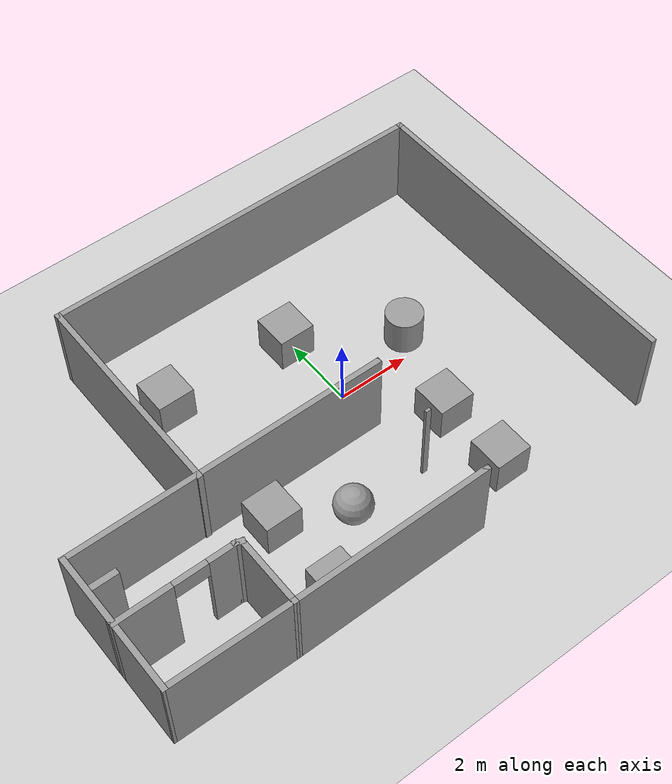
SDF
<sdf version="1.7">
 <world name="default">
  <light name="sun" type="directional">
   <pose>0 0 10 0 -0 0</pose>
   <diffuse>0.8 0.8 0.8 1</diffuse>
   <specular>0.2 0.2 0.2 1</specular>
   <attenuation>
    <range>1000</range>
    <constant>0.9</constant>
    <linear>0.01</linear>
    <quadratic>0.001</quadratic>
   </attenuation>
   <direction>-0.5 0.1 -0.9</direction>
   <spot><inner_angle>0</inner_angle><outer_angle>0</outer_angle><falloff>0</falloff></spot>
  </light>
  <model name="ground_plane">
   <static>1</static>
   <link name="link">
    <collision name="collision">
     <geometry><plane><normal>0 0 1</normal><size>100 100</size></plane></geometry>
     <surface>
      <contact><collide_bitmask>65535</collide_bitmask></contact>
      <friction><ode><mu>100</mu><mu2>50</mu2></ode></friction>
     </surface>
    </collision>
    <visual name="visual">
     <cast_shadows>0</cast_shadows>
     <geometry><plane><normal>0 0 1</normal><size>100 100</size></plane></geometry>
     <material>
      <script><uri>file://media/materials/scripts/gazebo.material</uri><name>Gazebo/Grey</name></script>
     </material>
    </visual>
   </link>
  </model>
  <gravity>0 0 -9.8</gravity>
  <magnetic_field>6e-06 2.3e-05 -4.2e-05</magnetic_field>
  <atmosphere type="adiabatic"/>
  <physics type="ode">
   <max_step_size>0.001</max_step_size>
   <real_time_factor>1</real_time_factor>
   <real_time_update_rate>1000</real_time_update_rate>
  </physics>
  <scene><ambient>0.4 0.4 0.4 1</ambient><background>0.7 0.7 0.7 1</background><shadows>1</shadows></scene>
  <spherical_coordinates>
   <surface_model>EARTH_WGS84</surface_model>
   <latitude_deg>0</latitude_deg>
   <longitude_deg>0</longitude_deg>
   <elevation>0</elevation>
   <heading_deg>0</heading_deg>
  </spherical_coordinates>
  <model name="room1">
   <pose>-4.14057 -2.53307 0 0 -0 0</pose>
   <link name="Door_0">
    <collision name="Door_0_Collision">
     <geometry><box><size>0.9 0.17 2</size></box></geometry>
     <pose>0 0 1 0 -0 0</pose>
    </collision>
    <visual name="Door_0_Visual">
     <pose>0 0 1 0 -0 0</pose>
     <geometry><box><size>0.9 0.17 2</size></box></geometry>
     <material>
      <script><uri>file://media/materials/scripts/gazebo.material</uri><name>Gazebo/Grey</name></script>
     </material>
    </visual>
    <pose>-3.87465 0.722165 0 0 -0 0</pose>
   </link>
   <link name="Wall_19">
    <collision name="Wall_19_Collision">
     <geometry><box><size>2 0.15 2.5</size></box></geometry>
     <pose>0 0 1.25 0 -0 0</pose>
    </collision>
    <visual name="Wall_19_Visual">
     <pose>0 0 1.25 0 -0 0</pose>
     <geometry><box><size>2 0.15 2.5</size></box></geometry>
     <material>
      <script><uri>file://media/materials/scripts/gazebo.material</uri><name>Gazebo/Grey</name></script>
      <ambient>1 1 1 1</ambient>
     </material>
     <meta><layer>0</layer></meta>
    </visual>
    <pose>-4.29943 0.468072 0 0 -0 1.5708</pose>
   </link>
   <link name="Wall_20">
    <collision name="Wall_20_Collision">
     <geometry><box><size>8.75 0.15 2.5</size></box></geometry>
     <pose>0 0 1.25 0 -0 0</pose>
    </collision>
    <visual name="Wall_20_Visual">
     <pose>0 0 1.25 0 -0 0</pose>
     <geometry><box><size>8.75 0.15 2.5</size></box></geometry>
     <material>
      <script><uri>file://media/materials/scripts/gazebo.material</uri><name>Gazebo/Grey</name></script>
      <ambient>1 1 1 1</ambient>
     </material>
     <meta><layer>0</layer></meta>
    </visual>
    <pose>0.000572 1.39307 0 0 -0 0</pose>
   </link>
   <link name="Wall_21">
    <pose>4.30057 -0.531928 0 0 -0 -1.5708</pose>
    <visual name="Wall_21_Visual_0">
     <pose>-1.93478 0 1.25 0 -0 0</pose>
     <geometry><box><size>0.130435 0.15 2.5</size></box></geometry>
     <material>
      <script><uri>file://media/materials/scripts/gazebo.material</uri><name>Gazebo/Grey</name></script>
      <ambient>1 1 1 1</ambient>
     </material>
     <meta><layer>0</layer></meta>
    </visual>
    <collision name="Wall_21_Collision_0">
     <geometry><box><size>0.130435 0.15 2.5</size></box></geometry>
     <pose>-1.93478 0 1.25 0 -0 0</pose>
    </collision>
    <visual name="Wall_21_Visual_1">
     <pose>-0.101824 0 1.25 0 -0 0</pose>
     <geometry><box><size>0.075482 0.15 2.5</size></box></geometry>
     <material>
      <script><uri>file://media/materials/scripts/gazebo.material</uri><name>Gazebo/Grey</name></script>
      <ambient>1 1 1 1</ambient>
     </material>
     <meta><layer>0</layer></meta>
    </visual>
    <collision name="Wall_21_Collision_1">
     <geometry><box><size>0.075482 0.15 2.5</size></box></geometry>
     <pose>-0.101824 0 1.25 0 -0 0</pose>
    </collision>
    <visual name="Wall_21_Visual_2">
     <pose>1.93296 0 1.25 0 -0 0</pose>
     <geometry><box><size>0.134083 0.15 2.5</size></box></geometry>
     <material>
      <script><uri>file://media/materials/scripts/gazebo.material</uri><name>Gazebo/Grey</name></script>
      <ambient>1 1 1 1</ambient>
     </material>
     <meta><layer>0</layer></meta>
    </visual>
    <collision name="Wall_21_Collision_2">
     <geometry><box><size>0.134083 0.15 2.5</size></box></geometry>
     <pose>1.93296 0 1.25 0 -0 0</pose>
    </collision>
   </link>
   <link name="Wall_22">
    <collision name="Wall_22_Collision">
     <geometry><box><size>5.5 0.15 2.5</size></box></geometry>
     <pose>0 0 1.25 0 -0 0</pose>
    </collision>
    <visual name="Wall_22_Visual">
     <pose>0 0 1.25 0 -0 0</pose>
     <geometry><box><size>5.5 0.15 2.5</size></box></geometry>
     <material>
      <script><uri>file://media/materials/scripts/gazebo.material</uri><name>Gazebo/Grey</name></script>
      <ambient>1 1 1 1</ambient>
     </material>
     <meta><layer>0</layer></meta>
    </visual>
    <pose>1.62557 -2.45693 0 0 -0 3.14159</pose>
   </link>
   <link name="Wall_23">
    <collision name="Wall_23_Collision">
     <geometry><box><size>2 0.15 2.5</size></box></geometry>
     <pose>0 0 1.25 0 -0 0</pose>
    </collision>
    <visual name="Wall_23_Visual">
     <pose>0 0 1.25 0 -0 0</pose>
     <geometry><box><size>2 0.15 2.5</size></box></geometry>
     <material>
      <script><uri>file://media/materials/scripts/gazebo.material</uri><name>Gazebo/Grey</name></script>
      <ambient>1 1 1 1</ambient>
     </material>
     <meta><layer>0</layer></meta>
    </visual>
    <pose>-1.04943 -1.53193 0 0 -0 1.5708</pose>
   </link>
   <link name="Wall_27">
    <collision name="Wall_27_Collision">
     <geometry><box><size>0.25 0.15 2.5</size></box></geometry>
     <pose>0 0 1.25 0 -0 0</pose>
    </collision>
    <visual name="Wall_27_Visual">
     <pose>0 0 1.25 0 -0 0</pose>
     <geometry><box><size>0.25 0.15 2.5</size></box></geometry>
     <material>
      <script><uri>file://media/materials/scripts/gazebo.material</uri><name>Gazebo/Grey</name></script>
      <ambient>1 1 1 1</ambient>
     </material>
     <meta><layer>0</layer></meta>
    </visual>
    <pose>-4.29943 -0.506927 0 0 -0 -1.5708</pose>
   </link>
   <link name="Wall_28">
    <pose>-2.74943 -0.556927 0 0 -0 0</pose>
    <visual name="Wall_28_Visual_0">
     <pose>-0.851527 0 1.25 0 -0 0</pose>
     <geometry><box><size>1.54695 0.15 2.5</size></box></geometry>
     <material>
      <script><uri>file://media/materials/scripts/gazebo.material</uri><name>Gazebo/Grey</name></script>
      <ambient>1 1 1 1</ambient>
     </material>
     <meta><layer>0</layer></meta>
    </visual>
    <collision name="Wall_28_Collision_0">
     <geometry><box><size>1.54695 0.15 2.5</size></box></geometry>
     <pose>-0.851527 0 1.25 0 -0 0</pose>
    </collision>
    <visual name="Wall_28_Visual_1">
     <pose>1.22347 0 1.25 0 -0 0</pose>
     <geometry><box><size>0.803053 0.15 2.5</size></box></geometry>
     <material>
      <script><uri>file://media/materials/scripts/gazebo.material</uri><name>Gazebo/Grey</name></script>
      <ambient>1 1 1 1</ambient>
     </material>
     <meta><layer>0</layer></meta>
    </visual>
    <collision name="Wall_28_Collision_1">
     <geometry><box><size>0.803053 0.15 2.5</size></box></geometry>
     <pose>1.22347 0 1.25 0 -0 0</pose>
    </collision>
    <visual name="Wall_28_Visual_2">
     <pose>0.371947 0 2.25 0 -0 0</pose>
     <geometry><box><size>0.9 0.15 0.5</size></box></geometry>
     <material>
      <script><uri>file://media/materials/scripts/gazebo.material</uri><name>Gazebo/Grey</name></script>
      <ambient>1 1 1 1</ambient>
     </material>
     <meta><layer>0</layer></meta>
    </visual>
    <collision name="Wall_28_Collision_2">
     <geometry><box><size>0.9 0.15 0.5</size></box></geometry>
     <pose>0.371947 0 2.25 0 -0 0</pose>
    </collision>
   </link>
   <link name="Wall_30">
    <collision name="Wall_30_Collision">
     <geometry><box><size>0.15 0.15 2.5</size></box></geometry>
     <pose>0 0 1.25 0 -0 0</pose>
    </collision>
    <visual name="Wall_30_Visual">
     <pose>0 0 1.25 0 -0 0</pose>
     <geometry><box><size>0.15 0.15 2.5</size></box></geometry>
     <material>
      <script><uri>file://media/materials/scripts/gazebo.material</uri><name>Gazebo/Grey</name></script>
      <ambient>1 1 1 1</ambient>
     </material>
     <meta><layer>0</layer></meta>
    </visual>
    <pose>-1.19943 -0.556927 0 0 -0 0</pose>
   </link>
   <link name="Wall_31">
    <collision name="Wall_31_Collision">
     <geometry><box><size>0.308114 0.15 2.5</size></box></geometry>
     <pose>0 0 1.25 0 -0 0</pose>
    </collision>
    <visual name="Wall_31_Visual">
     <pose>0 0 1.25 0 -0 0</pose>
     <geometry><box><size>0.308114 0.15 2.5</size></box></geometry>
     <material>
      <script><uri>file://media/materials/scripts/gazebo.material</uri><name>Gazebo/Grey</name></script>
      <ambient>1 1 1 1</ambient>
     </material>
     <meta><layer>0</layer></meta>
    </visual>
    <pose>-1.12443 -0.581928 0 0 -0 -0.321751</pose>
   </link>
   <link name="Wall_34">
    <collision name="Wall_34_Collision">
     <geometry><box><size>2 0.15 2.5</size></box></geometry>
     <pose>0 0 1.25 0 -0 0</pose>
    </collision>
    <visual name="Wall_34_Visual">
     <pose>0 0 1.25 0 -0 0</pose>
     <geometry><box><size>2 0.15 2.5</size></box></geometry>
     <material>
      <script><uri>file://media/materials/scripts/gazebo.material</uri><name>Gazebo/Grey</name></script>
      <ambient>1 1 1 1</ambient>
     </material>
     <meta><layer>0</layer></meta>
    </visual>
    <pose>-4.29943 -1.48193 0 0 -0 -1.5708</pose>
   </link>
   <link name="Wall_35">
    <collision name="Wall_35_Collision">
     <geometry><box><size>3.40038 0.15 2.5</size></box></geometry>
     <pose>0 0 1.25 0 -0 0</pose>
    </collision>
    <visual name="Wall_35_Visual">
     <pose>0 0 1.25 0 -0 0</pose>
     <geometry><box><size>3.40038 0.15 2.5</size></box></geometry>
     <material>
      <script><uri>file://media/materials/scripts/gazebo.material</uri><name>Gazebo/Grey</name></script>
      <ambient>1 1 1 1</ambient>
     </material>
     <meta><layer>0</layer></meta>
    </visual>
    <pose>-2.67443 -2.43193 0 0 -0 -0.015383</pose>
   </link>
   <static>1</static>
  </model>
  <model name="unit_box">
   <link name="link">
    <inertial>
     <mass>1</mass>
     <inertia>
      <ixx>0.166667</ixx>
      <ixy>0</ixy>
      <ixz>0</ixz>
      <iyy>0.166667</iyy>
      <iyz>0</iyz>
      <izz>0.166667</izz>
     </inertia>
    </inertial>
    <visual name="visual">
     <geometry><box><size>1 1 1</size></box></geometry>
     <material>
      <script><name>Gazebo/Grey</name><uri>file://media/materials/scripts/gazebo.material</uri></script>
      <shader type="pixel"/>
     </material>
    </visual>
    <collision name="collision">
     <geometry><box><size>1 1 1</size></box></geometry>
     <surface>
      <friction>
       <ode><mu>1</mu><mu2>1</mu2><fdir1>0 0 0</fdir1><slip1>0</slip1><slip2>0</slip2></ode>
       <torsional>
        <coefficient>1</coefficient>
        <patch_radius>0</patch_radius>
        <surface_radius>0</surface_radius>
        <use_patch_radius>1</use_patch_radius>
        <ode><slip>0</slip></ode>
       </torsional>
      </friction>
      <bounce><restitution_coefficient>0</restitution_coefficient><threshold>1e+06</threshold></bounce>
      <contact>
       <collide_without_contact>0</collide_without_contact>
       <collide_without_contact_bitmask>1</collide_without_contact_bitmask>
       <collide_bitmask>1</collide_bitmask>
       <ode>
        <soft_cfm>0</soft_cfm>
        <soft_erp>0.2</soft_erp>
        <kp>1e+13</kp>
        <kd>1</kd>
        <max_vel>0.01</max_vel>
        <min_depth>0</min_depth>
       </ode>
       <bullet>
        <split_impulse>1</split_impulse>
        <split_impulse_penetration_threshold>-0.01</split_impulse_penetration_threshold>
        <soft_cfm>0</soft_cfm>
        <soft_erp>0.2</soft_erp>
        <kp>1e+13</kp>
        <kd>1</kd>
       </bullet>
      </contact>
     </surface>
    </collision>
   </link>
   <link name="link_1">
    <inertial>
     <mass>1</mass>
     <inertia>
      <ixx>0.166667</ixx>
      <ixy>0</ixy>
      <ixz>0</ixz>
      <iyy>0.166667</iyy>
      <iyz>0</iyz>
      <izz>0.166667</izz>
     </inertia>
    </inertial>
    <pose>-0.077876 2.32444 2.8e-05 1e-05 -0 0</pose>
    <visual name="visual">
     <geometry><box><size>1 1 1</size></box></geometry>
     <material>
      <lighting>1</lighting>
      <script><uri>file://media/materials/scripts/gazebo.material</uri><name>Gazebo/Grey</name></script>
      <shader type="pixel"><normal_map>__default__</normal_map></shader>
      <ambient>0.3 0.3 0.3 1</ambient>
      <diffuse>0.7 0.7 0.7 1</diffuse>
      <specular>0.01 0.01 0.01 1</specular>
      <emissive>0 0 0 1</emissive>
     </material>
    </visual>
    <collision name="collision">
     <geometry><box><size>1 1 1</size></box></geometry>
     <surface>
      <friction>
       <ode><mu>1</mu><mu2>1</mu2><fdir1>0 0 0</fdir1><slip1>0</slip1><slip2>0</slip2></ode>
       <torsional>
        <coefficient>1</coefficient>
        <patch_radius>0</patch_radius>
        <surface_radius>0</surface_radius>
        <use_patch_radius>1</use_patch_radius>
        <ode><slip>0</slip></ode>
       </torsional>
      </friction>
      <bounce><restitution_coefficient>0</restitution_coefficient><threshold>1e+06</threshold></bounce>
      <contact>
       <collide_without_contact>0</collide_without_contact>
       <collide_without_contact_bitmask>1</collide_without_contact_bitmask>
       <collide_bitmask>1</collide_bitmask>
       <ode>
        <soft_cfm>0</soft_cfm>
        <soft_erp>0.2</soft_erp>
        <kp>1e+13</kp>
        <kd>1</kd>
        <max_vel>0.01</max_vel>
        <min_depth>0</min_depth>
       </ode>
       <bullet>
        <split_impulse>1</split_impulse>
        <split_impulse_penetration_threshold>-0.01</split_impulse_penetration_threshold>
        <soft_cfm>0</soft_cfm>
        <soft_erp>0.2</soft_erp>
        <kp>1e+13</kp>
        <kd>1</kd>
       </bullet>
      </contact>
     </surface>
    </collision>
   </link>
   <link name="link_2">
    <inertial>
     <mass>1</mass>
     <inertia><ixx>0.1</ixx><ixy>0</ixy><ixz>0</ixz><iyy>0.1</iyy><iyz>0</iyz><izz>0.1</izz></inertia>
    </inertial>
    <pose>1.61877 1.42939 1.9e-05 1e-05 -0 0</pose>
    <visual name="visual">
     <geometry><sphere><radius>0.5</radius></sphere></geometry>
     <material>
      <lighting>1</lighting>
      <script><uri>file://media/materials/scripts/gazebo.material</uri><name>Gazebo/Grey</name></script>
      <shader type="pixel"/>
     </material>
    </visual>
    <collision name="collision">
     <geometry><sphere><radius>0.5</radius></sphere></geometry>
     <surface>
      <friction>
       <ode><mu>1</mu><mu2>1</mu2><fdir1>0 0 0</fdir1><slip1>0</slip1><slip2>0</slip2></ode>
       <torsional>
        <coefficient>1</coefficient>
        <patch_radius>0</patch_radius>
        <surface_radius>0</surface_radius>
        <use_patch_radius>1</use_patch_radius>
        <ode><slip>0</slip></ode>
       </torsional>
      </friction>
      <bounce><restitution_coefficient>0</restitution_coefficient><threshold>1e+06</threshold></bounce>
      <contact>
       <collide_without_contact>0</collide_without_contact>
       <collide_without_contact_bitmask>1</collide_without_contact_bitmask>
       <collide_bitmask>1</collide_bitmask>
       <ode>
        <soft_cfm>0</soft_cfm>
        <soft_erp>0.2</soft_erp>
        <kp>1e+13</kp>
        <kd>1</kd>
        <max_vel>0.01</max_vel>
        <min_depth>0</min_depth>
       </ode>
       <bullet>
        <split_impulse>1</split_impulse>
        <split_impulse_penetration_threshold>-0.01</split_impulse_penetration_threshold>
        <soft_cfm>0</soft_cfm>
        <soft_erp>0.2</soft_erp>
        <kp>1e+13</kp>
        <kd>1</kd>
       </bullet>
      </contact>
     </surface>
    </collision>
   </link>
   <link name="link_3">
    <inertial>
     <mass>1</mass>
     <inertia>
      <ixx>0.166667</ixx>
      <ixy>0</ixy>
      <ixz>0</ixz>
      <iyy>0.166667</iyy>
      <iyz>0</iyz>
      <izz>0.166667</izz>
     </inertia>
    </inertial>
    <pose>5.17507 2.35499 2.8e-05 1e-05 -0 0</pose>
    <visual name="visual">
     <geometry><box><size>1 1 1</size></box></geometry>
     <material>
      <lighting>1</lighting>
      <script><uri>file://media/materials/scripts/gazebo.material</uri><name>Gazebo/Grey</name></script>
      <shader type="pixel"/>
     </material>
    </visual>
    <collision name="collision">
     <geometry><box><size>1 1 1</size></box></geometry>
     <surface>
      <friction>
       <ode><mu>1</mu><mu2>1</mu2><fdir1>0 0 0</fdir1><slip1>0</slip1><slip2>0</slip2></ode>
       <torsional>
        <coefficient>1</coefficient>
        <patch_radius>0</patch_radius>
        <surface_radius>0</surface_radius>
        <use_patch_radius>1</use_patch_radius>
        <ode><slip>0</slip></ode>
       </torsional>
      </friction>
      <bounce><restitution_coefficient>0</restitution_coefficient><threshold>1e+06</threshold></bounce>
      <contact>
       <collide_without_contact>0</collide_without_contact>
       <collide_without_contact_bitmask>1</collide_without_contact_bitmask>
       <collide_bitmask>1</collide_bitmask>
       <ode>
        <soft_cfm>0</soft_cfm>
        <soft_erp>0.2</soft_erp>
        <kp>1e+13</kp>
        <kd>1</kd>
        <max_vel>0.01</max_vel>
        <min_depth>0</min_depth>
       </ode>
       <bullet>
        <split_impulse>1</split_impulse>
        <split_impulse_penetration_threshold>-0.01</split_impulse_penetration_threshold>
        <soft_cfm>0</soft_cfm>
        <soft_erp>0.2</soft_erp>
        <kp>1e+13</kp>
        <kd>1</kd>
       </bullet>
      </contact>
     </surface>
    </collision>
   </link>
   <link name="link_4">
    <inertial>
     <mass>1</mass>
     <inertia>
      <ixx>0.166667</ixx>
      <ixy>0</ixy>
      <ixz>0</ixz>
      <iyy>0.166667</iyy>
      <iyz>0</iyz>
      <izz>0.166667</izz>
     </inertia>
    </inertial>
    <pose>5.19446 0.329196 8e-06 1e-05 -0 0</pose>
    <visual name="visual">
     <geometry><box><size>1 1 1</size></box></geometry>
     <material>
      <lighting>1</lighting>
      <script><uri>file://media/materials/scripts/gazebo.material</uri><name>Gazebo/Grey</name></script>
      <shader type="pixel"/>
     </material>
    </visual>
    <collision name="collision">
     <geometry><box><size>1 1 1</size></box></geometry>
     <surface>
      <friction>
       <ode><mu>1</mu><mu2>1</mu2><fdir1>0 0 0</fdir1><slip1>0</slip1><slip2>0</slip2></ode>
       <torsional>
        <coefficient>1</coefficient>
        <patch_radius>0</patch_radius>
        <surface_radius>0</surface_radius>
        <use_patch_radius>1</use_patch_radius>
        <ode><slip>0</slip></ode>
       </torsional>
      </friction>
      <bounce><restitution_coefficient>0</restitution_coefficient><threshold>1e+06</threshold></bounce>
      <contact>
       <collide_without_contact>0</collide_without_contact>
       <collide_without_contact_bitmask>1</collide_without_contact_bitmask>
       <collide_bitmask>1</collide_bitmask>
       <ode>
        <soft_cfm>0</soft_cfm>
        <soft_erp>0.2</soft_erp>
        <kp>1e+13</kp>
        <kd>1</kd>
        <max_vel>0.01</max_vel>
        <min_depth>0</min_depth>
       </ode>
       <bullet>
        <split_impulse>1</split_impulse>
        <split_impulse_penetration_threshold>-0.01</split_impulse_penetration_threshold>
        <soft_cfm>0</soft_cfm>
        <soft_erp>0.2</soft_erp>
        <kp>1e+13</kp>
        <kd>1</kd>
       </bullet>
      </contact>
     </surface>
    </collision>
   </link>
   <static>0</static>
   <pose>-3.5688 -4.32512 0.499995 -1e-05 0 0</pose>
  </model>
  <model name="mycar">
   <link name="base_footprint">
    <inertial>
     <pose>0.00127 0 0.093611 0 -0 0</pose>
     <mass>0.63</mass>
     <inertia>
      <ixx>0.00557395</ixx>
      <ixy>0</ixy>
      <ixz>-1.11111e-05</ixz>
      <iyy>0.00563694</iyy>
      <iyz>0</iyz>
      <izz>0.00261003</izz>
     </inertia>
    </inertial>
    <collision name="base_footprint_fixed_joint_lump__base_link_collision">
     <pose>0 0 0.055 0 -0 0</pose>
     <geometry><cylinder><length>0.08</length><radius>0.1</radius></cylinder></geometry>
    </collision>
    <collision name="base_footprint_fixed_joint_lump__camera_collision_1">
     <pose>0.08 0 0.1075 0 -0 0</pose>
     <geometry><box><size>0.01 0.025 0.025</size></box></geometry>
    </collision>
    <collision name="base_footprint_fixed_joint_lump__support_collision_2">
     <pose>0 0 0.17 0 -0 0</pose>
     <geometry><cylinder><length>0.15</length><radius>0.01</radius></cylinder></geometry>
    </collision>
    <collision name="base_footprint_fixed_joint_lump__laser_collision_3">
     <pose>0 0 0.27 0 -0 0</pose>
     <geometry><cylinder><length>0.05</length><radius>0.03</radius></cylinder></geometry>
    </collision>
    <visual name="base_footprint_visual"><geometry><sphere><radius>0.001</radius></sphere></geometry></visual>
    <visual name="base_footprint_fixed_joint_lump__base_link_visual_1">
     <pose>0 0 0.055 0 -0 0</pose>
     <geometry><cylinder><length>0.08</length><radius>0.1</radius></cylinder></geometry>
     <material>
      <script><name>Gazebo/Yellow</name><uri>file://media/materials/scripts/gazebo.material</uri></script>
     </material>
    </visual>
    <visual name="base_footprint_fixed_joint_lump__camera_visual_2">
     <pose>0.08 0 0.1075 0 -0 0</pose>
     <geometry><box><size>0.01 0.025 0.025</size></box></geometry>
     <material>
      <script><name>Gazebo/Blue</name><uri>file://media/materials/scripts/gazebo.material</uri></script>
     </material>
    </visual>
    <visual name="base_footprint_fixed_joint_lump__support_visual_3">
     <pose>0 0 0.17 0 -0 0</pose>
     <geometry><cylinder><length>0.15</length><radius>0.01</radius></cylinder></geometry>
     <material>
      <script><name>Gazebo/White</name><uri>file://media/materials/scripts/gazebo.material</uri></script>
     </material>
    </visual>
    <visual name="base_footprint_fixed_joint_lump__laser_visual_4">
     <pose>0 0 0.27 0 -0 0</pose>
     <geometry><cylinder><length>0.05</length><radius>0.03</radius></cylinder></geometry>
     <material>
      <script><name>Gazebo/Black</name><uri>file://media/materials/scripts/gazebo.material</uri></script>
     </material>
    </visual>
    <sensor name="rplidar" type="ray">
     <visualize>1</visualize>
     <update_rate>5.5</update_rate>
     <ray>
      <scan>
       <horizontal>
        <samples>360</samples>
        <resolution>1</resolution>
        <min_angle>-3</min_angle>
        <max_angle>3</max_angle>
       </horizontal>
       <vertical><samples>1</samples><min_angle>0</min_angle><max_angle>0</max_angle></vertical>
      </scan>
      <range><min>0.1</min><max>30</max><resolution>0.01</resolution></range>
      <noise><type>gaussian</type><mean>0</mean><stddev>0.01</stddev></noise>
     </ray>
     <plugin name="gazebo_rplidar" filename="libgazebo_ros_laser.so">
      <topicName>/scan</topicName>
      <frameName>laser</frameName>
      <robotNamespace>/</robotNamespace>
     </plugin>
     <pose>0 0 0.27 0 -0 0</pose>
    </sensor>
   </link>
   <joint name="back_wheel2base_link" type="revolute">
    <pose relative_to="base_footprint">-0.0925 0 0.0075 0 -0 0</pose>
    <parent>base_footprint</parent>
    <child>back_wheel</child>
    <axis>
     <xyz>1 1 1</xyz>
     <limit><lower>-1e+16</lower><upper>1e+16</upper></limit>
     <dynamics><spring_reference>0</spring_reference><spring_stiffness>0</spring_stiffness></dynamics>
    </axis>
   </joint>
   <link name="back_wheel">
    <pose relative_to="back_wheel2base_link">0 0 0 0 -0 0</pose>
    <inertial>
     <mass>0.03</mass>
     <inertia>
      <ixx>6.75e-07</ixx>
      <ixy>0</ixy>
      <ixz>0</ixz>
      <iyy>6.75e-07</iyy>
      <iyz>0</iyz>
      <izz>6.75e-07</izz>
     </inertia>
    </inertial>
    <collision name="back_wheel_collision">
     <geometry><sphere><radius>0.0075</radius></sphere></geometry>
    </collision>
    <visual name="back_wheel_visual">
     <geometry><sphere><radius>0.0075</radius></sphere></geometry>
     <material>
      <script><name>Gazebo/Red</name><uri>file://media/materials/scripts/gazebo.material</uri></script>
     </material>
    </visual>
   </link>
   <joint name="front_wheel2base_link" type="revolute">
    <pose relative_to="base_footprint">0.0925 0 0.0075 0 -0 0</pose>
    <parent>base_footprint</parent>
    <child>front_wheel</child>
    <axis>
     <xyz>1 1 1</xyz>
     <limit><lower>-1e+16</lower><upper>1e+16</upper></limit>
     <dynamics><spring_reference>0</spring_reference><spring_stiffness>0</spring_stiffness></dynamics>
    </axis>
   </joint>
   <link name="front_wheel">
    <pose relative_to="front_wheel2base_link">0 0 0 0 -0 0</pose>
    <inertial>
     <mass>0.03</mass>
     <inertia>
      <ixx>6.75e-07</ixx>
      <ixy>0</ixy>
      <ixz>0</ixz>
      <iyy>6.75e-07</iyy>
      <iyz>0</iyz>
      <izz>6.75e-07</izz>
     </inertia>
    </inertial>
    <collision name="front_wheel_collision">
     <geometry><sphere><radius>0.0075</radius></sphere></geometry>
    </collision>
    <visual name="front_wheel_visual">
     <geometry><sphere><radius>0.0075</radius></sphere></geometry>
     <material>
      <script><name>Gazebo/Red</name><uri>file://media/materials/scripts/gazebo.material</uri></script>
     </material>
    </visual>
   </link>
   <joint name="left_wheel2base_link" type="revolute">
    <pose relative_to="base_footprint">0 0.1 0.0325 0 -0 0</pose>
    <parent>base_footprint</parent>
    <child>left_wheel</child>
    <axis>
     <xyz>0 1 0</xyz>
     <limit><lower>-1e+16</lower><upper>1e+16</upper></limit>
     <dynamics><spring_reference>0</spring_reference><spring_stiffness>0</spring_stiffness></dynamics>
    </axis>
   </joint>
   <link name="left_wheel">
    <pose relative_to="left_wheel2base_link">0 0 0 0 -0 0</pose>
    <inertial>
     <mass>0.05</mass>
     <inertia>
      <ixx>1.41406e-05</ixx>
      <ixy>0</ixy>
      <ixz>0</ixz>
      <iyy>1.41406e-05</iyy>
      <iyz>0</iyz>
      <izz>2.64063e-05</izz>
     </inertia>
    </inertial>
    <collision name="left_wheel_collision">
     <pose>0 0 0 1.5708 -0 0</pose>
     <geometry><cylinder><length>0.015</length><radius>0.0325</radius></cylinder></geometry>
    </collision>
    <visual name="left_wheel_visual">
     <pose>0 0 0 1.5708 -0 0</pose>
     <geometry><cylinder><length>0.015</length><radius>0.0325</radius></cylinder></geometry>
     <material>
      <script><name>Gazebo/Red</name><uri>file://media/materials/scripts/gazebo.material</uri></script>
     </material>
    </visual>
   </link>
   <joint name="right_wheel2base_link" type="revolute">
    <pose relative_to="base_footprint">0 -0.1 0.0325 0 -0 0</pose>
    <parent>base_footprint</parent>
    <child>right_wheel</child>
    <axis>
     <xyz>0 1 0</xyz>
     <limit><lower>-1e+16</lower><upper>1e+16</upper></limit>
     <dynamics><spring_reference>0</spring_reference><spring_stiffness>0</spring_stiffness></dynamics>
    </axis>
   </joint>
   <link name="right_wheel">
    <pose relative_to="right_wheel2base_link">0 0 0 0 -0 0</pose>
    <inertial>
     <mass>0.05</mass>
     <inertia>
      <ixx>1.41406e-05</ixx>
      <ixy>0</ixy>
      <ixz>0</ixz>
      <iyy>1.41406e-05</iyy>
      <iyz>0</iyz>
      <izz>2.64063e-05</izz>
     </inertia>
    </inertial>
    <collision name="right_wheel_collision">
     <pose>0 0 0 1.5708 -0 0</pose>
     <geometry><cylinder><length>0.015</length><radius>0.0325</radius></cylinder></geometry>
    </collision>
    <visual name="right_wheel_visual">
     <pose>0 0 0 1.5708 -0 0</pose>
     <geometry><cylinder><length>0.015</length><radius>0.0325</radius></cylinder></geometry>
     <material>
      <script><name>Gazebo/Red</name><uri>file://media/materials/scripts/gazebo.material</uri></script>
     </material>
    </visual>
   </link>
   <static>0</static>
   <plugin name="differential_drive_controller" filename="libgazebo_ros_diff_drive.so">
    <rosDebugLevel>Debug</rosDebugLevel>
    <publishWheelTF>1</publishWheelTF>
    <robotNamespace>/</robotNamespace>
    <publishTf>1</publishTf>
    <publishWheelJointState>1</publishWheelJointState>
    <alwaysOn>1</alwaysOn>
    <updateRate>100.0</updateRate>
    <legacyMode>1</legacyMode>
    <leftJoint>left_wheel2base_link</leftJoint>
    <rightJoint>right_wheel2base_link</rightJoint>
    <wheelSeparation>0.2</wheelSeparation>
    <wheelDiameter>0.065</wheelDiameter>
    <broadcastTF>1</broadcastTF>
    <wheelTorque>30</wheelTorque>
    <wheelAcceleration>1.8</wheelAcceleration>
    <commandTopic>cmd_vel</commandTopic>
    <odometryFrame>odom</odometryFrame>
    <odometryTopic>odom</odometryTopic>
    <robotBaseFrame>base_footprint</robotBaseFrame>
   </plugin>
   <pose>0.000327 -0.0003 0 0 0 -0.003395</pose>
  </model>
  <model name="room1_0">
   <pose>0.346394 0.001416 0 0 -0 0</pose>
   <link name="Wall_10">
    <collision name="Wall_10_Collision">
     <geometry><box><size>10.75 0.15 2.5</size></box></geometry>
     <pose>0 0 1.25 0 -0 0</pose>
    </collision>
    <visual name="Wall_10_Visual">
     <pose>0 0 1.25 0 -0 0</pose>
     <geometry><box><size>10.75 0.15 2.5</size></box></geometry>
     <material>
      <script><uri>file://media/materials/scripts/gazebo.material</uri><name>Gazebo/Grey</name></script>
      <ambient>1 1 1 1</ambient>
     </material>
     <meta><layer>0</layer></meta>
    </visual>
    <pose>-0 4.675 0 0 -0 3.14159</pose>
   </link>
   <link name="Wall_11">
    <collision name="Wall_11_Collision">
     <geometry><box><size>6 0.15 2.5</size></box></geometry>
     <pose>0 0 1.25 0 -0 0</pose>
    </collision>
    <visual name="Wall_11_Visual">
     <pose>0 0 1.25 0 -0 0</pose>
     <geometry><box><size>6 0.15 2.5</size></box></geometry>
     <material>
      <script><uri>file://media/materials/scripts/gazebo.material</uri><name>Gazebo/Grey</name></script>
      <ambient>1 1 1 1</ambient>
     </material>
     <meta><layer>0</layer></meta>
    </visual>
    <pose>-5.3 1.75 0 0 -0 -1.5708</pose>
   </link>
   <link name="Wall_9">
    <collision name="Wall_9_Collision">
     <geometry><box><size>9.5 0.15 2.5</size></box></geometry>
     <pose>0 0 1.25 0 -0 0</pose>
    </collision>
    <visual name="Wall_9_Visual">
     <pose>0 0 1.25 0 -0 0</pose>
     <geometry><box><size>9.5 0.15 2.5</size></box></geometry>
     <material>
      <script><uri>file://media/materials/scripts/gazebo.material</uri><name>Gazebo/Grey</name></script>
      <ambient>1 1 1 1</ambient>
     </material>
     <meta><layer>0</layer></meta>
    </visual>
    <pose>5.3 -0 0 0 -0 1.5708</pose>
   </link>
   <static>1</static>
  </model>
  <model name="unit_box_0">
   <pose>-3.64364 2.3484 0.499995 0 1e-05 0</pose>
   <link name="link">
    <inertial>
     <mass>1</mass>
     <inertia>
      <ixx>0.166667</ixx>
      <ixy>0</ixy>
      <ixz>0</ixz>
      <iyy>0.166667</iyy>
      <iyz>0</iyz>
      <izz>0.166667</izz>
     </inertia>
    </inertial>
    <collision name="collision"><geometry><box><size>1 1 1</size></box></geometry></collision>
    <visual name="visual">
     <geometry><box><size>1 1 1</size></box></geometry>
     <material>
      <script><name>Gazebo/Grey</name><uri>file://media/materials/scripts/gazebo.material</uri></script>
     </material>
    </visual>
   </link>
  </model>
  <model name="unit_box_1">
   <pose>-0.135355 2.14197 0.499995 -1e-05 -0 0</pose>
   <link name="link">
    <inertial>
     <mass>1</mass>
     <inertia>
      <ixx>0.166667</ixx>
      <ixy>0</ixy>
      <ixz>0</ixz>
      <iyy>0.166667</iyy>
      <iyz>0</iyz>
      <izz>0.166667</izz>
     </inertia>
    </inertial>
    <collision name="collision"><geometry><box><size>1 1 1</size></box></geometry></collision>
    <visual name="visual">
     <geometry><box><size>1 1 1</size></box></geometry>
     <material>
      <script><name>Gazebo/Grey</name><uri>file://media/materials/scripts/gazebo.material</uri></script>
     </material>
    </visual>
   </link>
  </model>
  <model name="unit_cylinder">
   <pose>2.42646 0.5428 0.499997 3e-06 4e-06 -0</pose>
   <link name="link">
    <inertial>
     <mass>1</mass>
     <inertia><ixx>0.145833</ixx><ixy>0</ixy><ixz>0</ixz><iyy>0.145833</iyy><iyz>0</iyz><izz>0.125</izz></inertia>
    </inertial>
    <collision name="collision">
     <geometry><cylinder><radius>0.5</radius><length>1</length></cylinder></geometry>
    </collision>
    <visual name="visual">
     <geometry><cylinder><radius>0.5</radius><length>1</length></cylinder></geometry>
     <material>
      <script><name>Gazebo/Grey</name><uri>file://media/materials/scripts/gazebo.material</uri></script>
     </material>
    </visual>
   </link>
  </model>
 </world>
</sdf>
